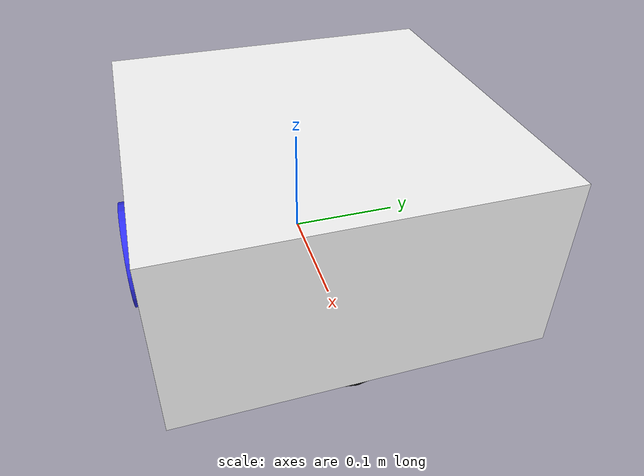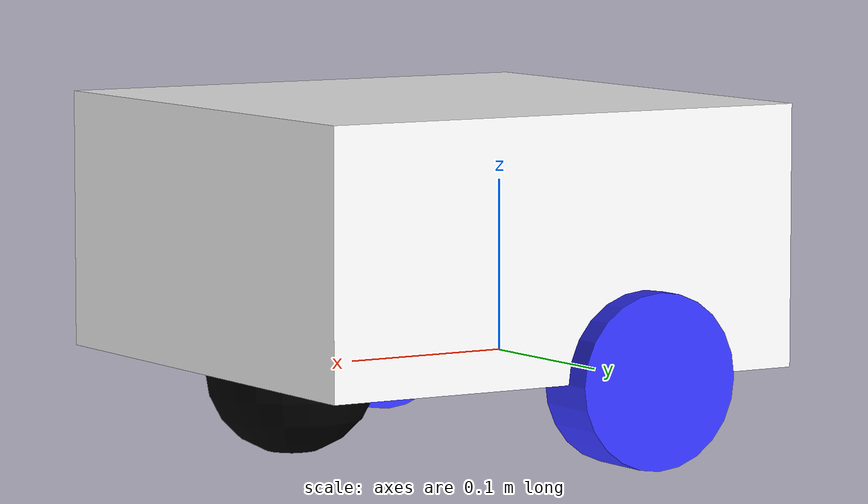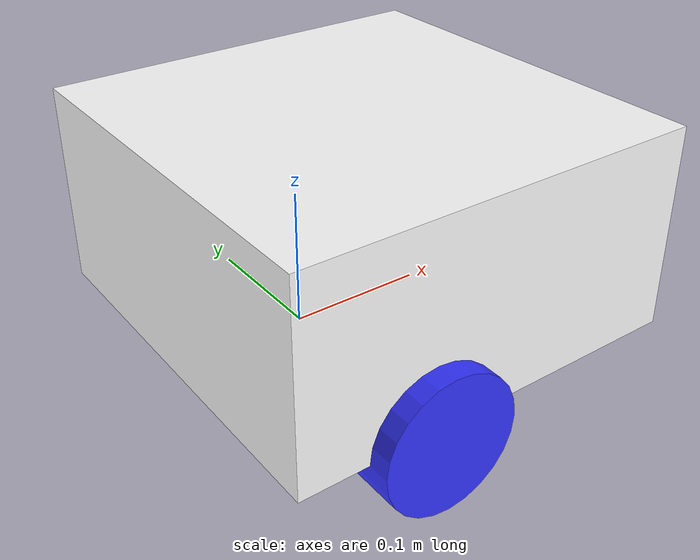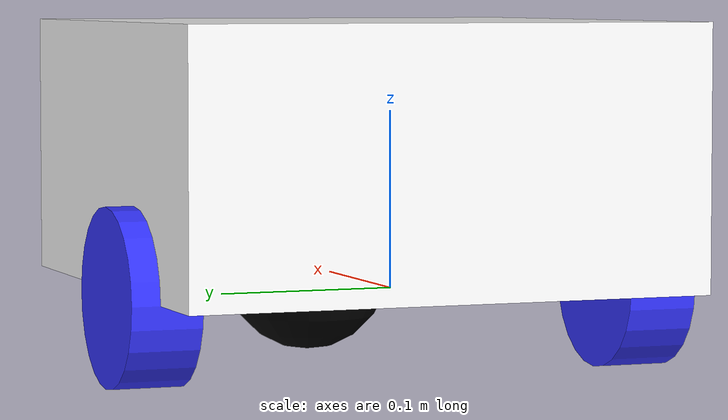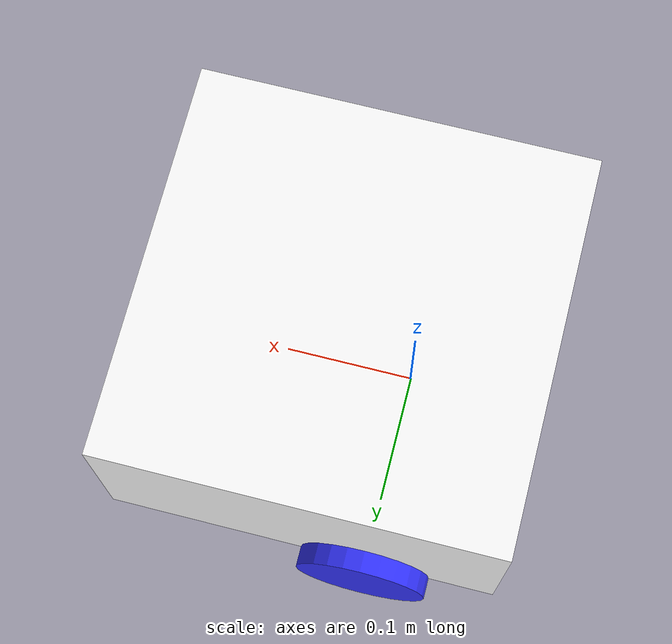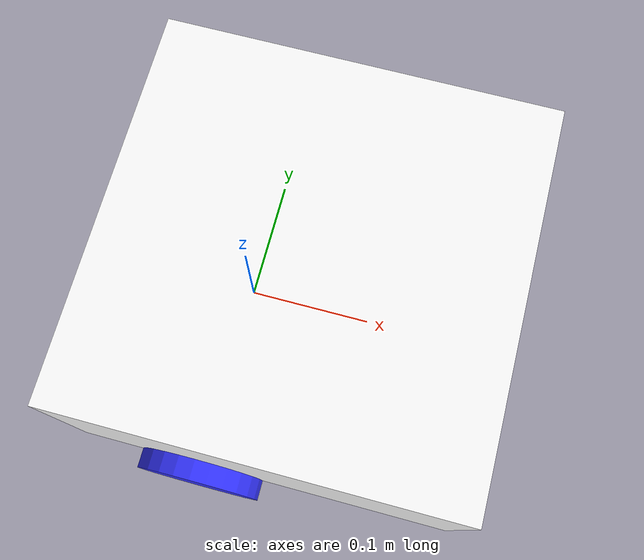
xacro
<?xml version="1.0"?>
<robot xmlns:xacro="http://www.ros.org/wiki/xacro">

    <xacro:include filename="inertial_macros.xacro" />

    <material name="white">
        <color rgba="1 1 1 1" />
    </material>

    <material name="orange">
        <color rgba="1 0.3 0.1 1" />
    </material>

    <material name="blue">
        <color rgba="0.2 0.2 1 1" />
    </material>

    <material name="black">
        <color rgba="0 0 0 1" />
    </material>

    <material name="red">
        <color rgba="1 0 0 1"/>
    </material>

    <!-- Base Link -->

    <link name="base_link">
        <origin xyz='0 0 0' rpy='0 0 0'/>
    </link>

    <!-- Base Footprint Link -->
     <joint name='base_footprint_joint' type='fixed'>
        <parent link='base_link'/>
        <child link='base_footprint'/>
        <origin xyz='0 0 0' rpy='0 0 0'/>

     </joint>

     <link name='base_footprint'>

     </link>

    <!-- Chassis -->

    <joint name="chassis_joint" type="fixed">
        <parent link="base_link" />
        <child link="chassis" />
        <origin xyz="-0.1 0 0" />
    </joint>

    <link name="chassis">
        <visual>
            <origin xyz="0.15 0 0.075" rpy="0 0 0" />
            <geometry>
                <box size="0.3 0.3 0.15" />
            </geometry>
            <material name="white" />
        </visual>
        <collision>
            <origin xyz="0.15 0 0.075" rpy="0 0 0" />
            <geometry>
                <box size="0.3 0.3 0.15" />
            </geometry>
        </collision>
        <xacro:inertial_box mass="0.5" x="0.3" y="0.3" z="0.15">
            <origin xyz="0.15 0 0.075" rpy="0 0 0" />
        </xacro:inertial_box>
    </link>

    <!-- LEFT WHEEL -->

    <joint name="left_wheel_joint" type="continuous">
        <parent link="base_link" />
        <child link="left_wheel" />
        <origin xyz="0 0.146 0" rpy="-${pi/2} 0 0" />
        <axis xyz="0 0 1" />
        <limit effort="0.05" velocity="10.0" />
    </joint>

    <link name="left_wheel">
        <visual>
            <geometry>
                <cylinder length="0.04" radius="0.05" />
            </geometry>
            <material name="blue" />
        </visual>
        <collision>
            <geometry>
                <sphere radius="0.031" />
            </geometry>
        </collision>
        <xacro:inertial_cylinder mass="0.1" length="0.04" radius="0.031">
            <origin xyz="0 0 0" rpy="0 0 0" />
        </xacro:inertial_cylinder>
    </link>

    <!-- RIGHT WHEEL -->

    <joint name="right_wheel_joint" type="continuous">
        <parent link="base_link" />
        <child link="right_wheel" />
        <origin xyz="0 -0.146 0" rpy="${pi/2} 0 0" />
        <axis xyz="0 0 -1" />
        <limit effort="0.05" velocity="10.0" />
    </joint>

    <link name="right_wheel">
        <visual>
            <geometry>
                <cylinder length="0.04" radius="0.05" />
            </geometry>
            <material name="blue" />
        </visual>
        <collision>
            <geometry>
                <sphere radius="0.031" />
            </geometry>
        </collision>
        <xacro:inertial_cylinder mass="0.1" length="0.04" radius="0.031">
            <origin xyz="0 0 0" rpy="0 0 0" />
        </xacro:inertial_cylinder>
    </link>

    <!-- CASTER WHEEL -->

    <joint name="caster_wheel_joint" type="fixed">
        <parent link="chassis" />
        <child link="caster_wheel" />
        <origin xyz="0.24 0 0" rpy="0 0 0" />
    </joint>

    <link name="caster_wheel">
        <visual>
            <geometry>
                <sphere radius="0.05" />
            </geometry>
            <material name="black" />
        </visual>
        <collision>
            <geometry>
                <sphere radius="0.031" />
            </geometry>
        </collision>
        <xacro:inertial_sphere mass="0.1" radius="0.031">
            <origin xyz="0 0 0" rpy="0 0 0" />
        </xacro:inertial_sphere>
    </link>

    <gazebo reference="caster_wheel">
        <mu1 value="0.0" />
        <mu2 value="0.0" />
    </gazebo>

</robot>
